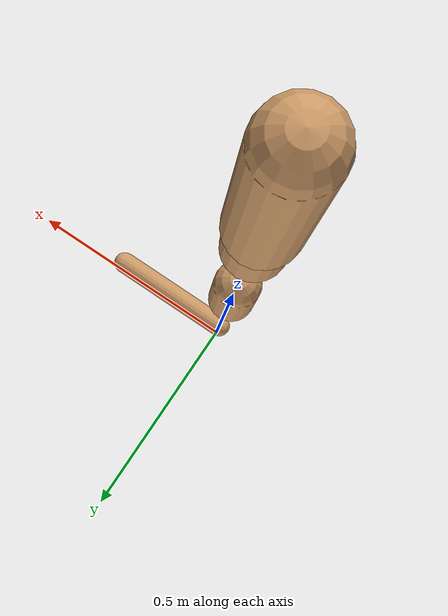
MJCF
<mujoco model="walker2d">
  <compiler angle="degree" coordinate="global" inertiafromgeom="true" />
  <default>
    <joint armature="0.01" damping=".1" limited="true" />
    <geom conaffinity="0" condim="3" contype="1" density="1000" friction="0.8 .1 .1" rgba="0.8 0.6 .4 1" />
  </default>
  <option integrator="RK4" timestep="0.002" />
  <worldbody>

    <body name="torso" pos="0 0 -0.6543483860893549">
      <joint armature="0" axis="1 0 0" damping="0" limited="false" name="ignorex" pos="0 0 0" stiffness="0" type="slide" />
      <joint armature="0" axis="0 0 1" damping="0" limited="false" name="ignorez" pos="0 0 0" ref="1.25" stiffness="0" type="slide" />
      <joint armature="0" axis="0 1 0" damping="0" limited="false" name="ignorey" pos="0 0 0" stiffness="0" type="hinge" />
      <geom fromto="0 0 1.45 0 0 1.05" name="torso_geom" size="0.06897353774095472" type="capsule" />
      <body name="thigh">
        <joint axis="0 -1 0" name="thigh_joint" pos="0 0 1.05" range="-150 0" type="hinge" />
        <geom fromto="0.0 0.0 1.05 0.0 0.0 0.909954498673905" name="thigh_geom" size="0.05974972981389568" type="capsule" />
        <body name="leg" pos="0.0 0.0 0.309954498673905">
          <joint axis="0 -1 0" name="leg_joint" pos="0 0 0.6" range="-150 0" type="hinge" />
          <geom fromto="0.0 0.0 0.6 0.0 0.0 0.44439388741544994" name="leg_geom" size="0.047799783851116544" type="capsule" />
          <body name="foot" pos="0.0 0.0 0.34439388741544996">
            <joint axis="0 -1 0" name="foot_joint" pos="0 0 0.1" range="-45 45" type="hinge" />
            <geom fromto="-0.0 0.0 0.1 0.27082063149827046 0.0 0.1" name="foot_geom" size="0.02496844914452167" type="capsule" />
          </body>
        </body>
      </body>

      <body name="thigh_left">
        <joint axis="0 -1 0" name="thigh_left_joint" pos="0 0 1.05" range="-150 0" type="hinge" />
        <geom fromto="0.0 0.0 1.05 0.0 0.0 0.909954498673905" name="thigh_left_geom" rgba=".7 .3 .6 1" size="0.05974972981389568" type="capsule" />
        <body name="leg_left" pos="0.0 0.0 0.309954498673905">
          <joint axis="0 -1 0" name="leg_left_joint" pos="0 0 0.6" range="-150 0" type="hinge" />
          <geom fromto="0.0 0.0 0.6 0.0 0.0 0.44439388741544994" name="leg_left_geom" rgba=".7 .3 .6 1" size="0.047799783851116544" type="capsule" />
          <body name="foot_left" pos="0.0 0.0 0.34439388741544996">
            <joint axis="0 -1 0" name="foot_left_joint" pos="0 0 0.1" range="-45 45" type="hinge" />
            <geom fromto="-0.0 0.0 0.1 0.27082063149827046 0.0 0.1" name="foot_left_geom" rgba=".7 .3 .6 1" size="0.02496844914452167" type="capsule" />
          </body>
        </body>
      </body>
    </body>
  </worldbody>
  <actuator>

    <motor ctrllimited="true" ctrlrange="-1.0 1.0" gear="100" joint="thigh_joint" />
    <motor ctrllimited="true" ctrlrange="-1.0 1.0" gear="100" joint="leg_joint" />
    <motor ctrllimited="true" ctrlrange="-1.0 1.0" gear="100" joint="foot_joint" />
    <motor ctrllimited="true" ctrlrange="-1.0 1.0" gear="100" joint="thigh_left_joint" />
    <motor ctrllimited="true" ctrlrange="-1.0 1.0" gear="100" joint="leg_left_joint" />
    <motor ctrllimited="true" ctrlrange="-1.0 1.0" gear="100" joint="foot_left_joint" />

  </actuator>
</mujoco>
